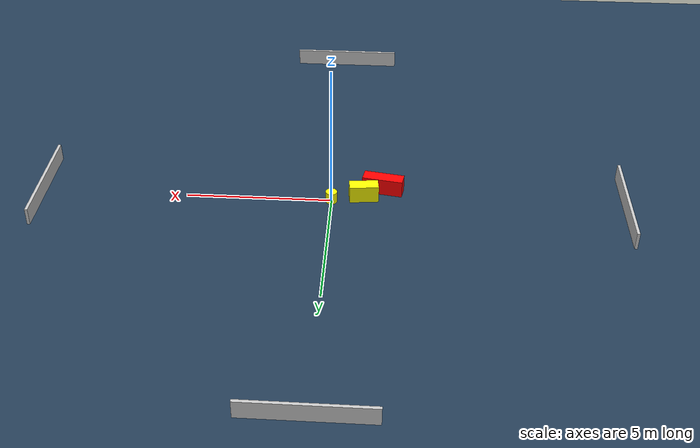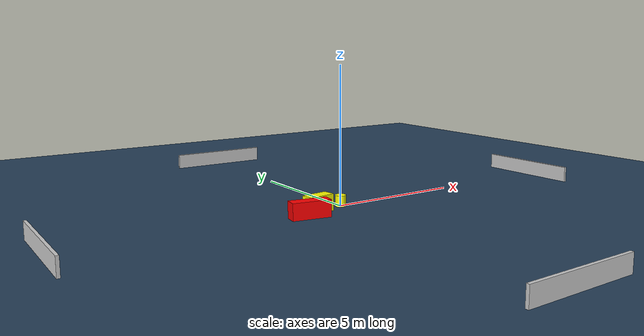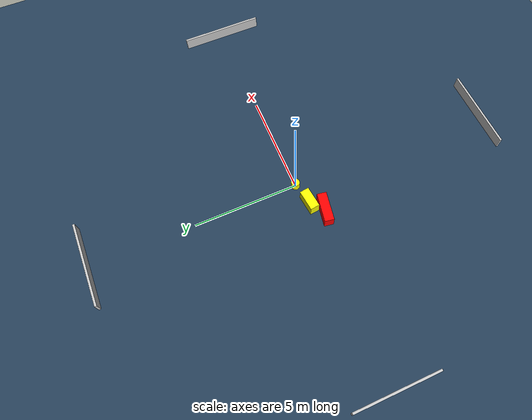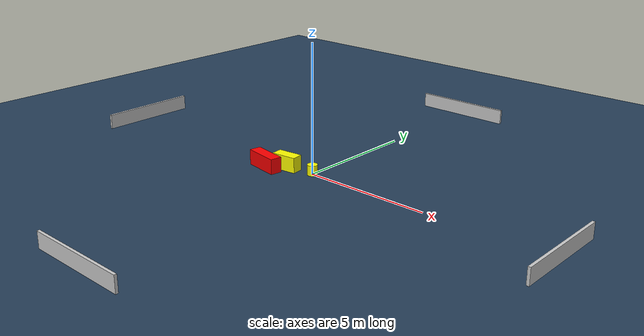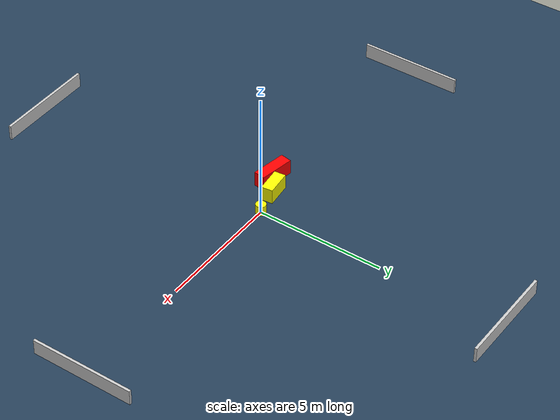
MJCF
<?xml version="1.0" ?>
<mujoco model="generated_environment">
  <option timestep="0.01" integrator="RK4" cone="elliptic"/>
  <default>
    <geom density="1"/>
  </default>
  <asset>
    <texture builtin="gradient" height="3072" name="skybox" rgb1="0.3 0.5 0.7" rgb2="0 0 0" type="skybox" width="512"/>
    <texture builtin="checker" height="300" name="groundplane" rgb1="0.2 0.3 0.4" rgb2="0.1 0.2 0.3" type="2d" width="300"/>
    <material name="groundplane" reflectance="0.2" texrepeat="5 5" texture="groundplane"/>
  </asset>
  <worldbody>
    <light dir="0 0 -1" directional="true" pos="0 0 1.5"/>
    <geom condim="3" friction="0.5 0.005 0.001" material="groundplane" name="floor" pos="0 0 0" size="0 0 0.05" type="plane"/>
    <body name="walls">
      <geom name="wall_1" condim="4" pos="-10.0 0.0 0.3" rgba="0.800000011920929 0.800000011920929 0.800000011920929 1.0" size="0.05 2.0 0.3" type="box"/>
      <geom name="wall_2" condim="4" pos="10.0 0.0 0.3" rgba="0.800000011920929 0.800000011920929 0.800000011920929 1.0" size="0.05 2.0 0.3" type="box"/>
      <geom name="wall_3" condim="4" pos="0.0 -10.0 0.3" rgba="0.800000011920929 0.800000011920929 0.800000011920929 1.0" size="2.0 0.05 0.3" type="box"/>
      <geom name="wall_4" condim="4" pos="0.0 10.0 0.3" rgba="0.800000011920929 0.800000011920929 0.800000011920929 1.0" size="2.0 0.05 0.3" type="box"/>
    </body>
    <body name="robot">
      <joint name="joint_x" type="slide" pos="0 0 0" axis="1 0 0"/>
      <joint name="joint_y" type="slide" pos="0 0 0" axis="0 1 0"/>
      <geom name="robot" type="cylinder" pos="0.0 0.0 0.2" size="0.2 0.2 0.0" mass="5.0" friction="1.0 0.005 0.0001" condim="4" rgba="1.0 1.0 0.0 1.0"/>
    </body>
    <body name="obstacle_1_movable">
      <geom name="obstacle_1_movable" condim="4" pos="-1.1000529208957195 -0.22709548840573412 0.3" euler="0 0 96.43919463543551" friction="0.0 0.005 0.001" rgba="1.0 1.0 0.0 1.0" size="0.22493004846306336 0.49964513055534565 0.3" type="box" mass="0.1"/>
      <joint type="free"/>
    </body>
    <body name="obstacle_2_static">
      <geom name="obstacle_2_static" condim="4" pos="-1.7549147717213303 -0.7246390345349457 0.3" euler="0 0 80.33387960954994" friction="0.0 0.005 0.001" rgba="1.0 0.0 0.0 1.0" size="0.22612451034880532 0.6957934710368119 0.3" type="box"/>
    </body>
  </worldbody>
  <actuator>
    <motor name="actuator_x" joint="joint_x" gear="1" ctrlrange="-1 1"/>
    <motor name="actuator_y" joint="joint_y" gear="1" ctrlrange="-1 1"/>
  </actuator>
</mujoco>
